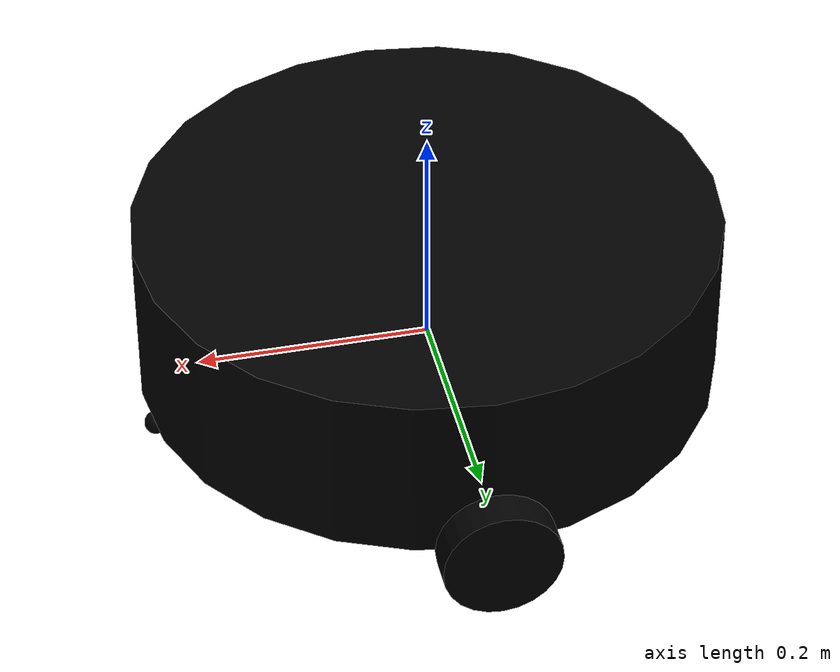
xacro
<?xml version="1.0" ?>
<robot name="simple_bot" xmlns:xacro="http://www.ros.org/wiki/xacro">

  <xacro:macro name="black" >
    <visual>
        <material>
          <ambient>0 0 0 1</ambient>
          <diffuse>0 0 0 1</diffuse>
          <specular>0 0 0 0</specular>
          <emissive>0 0 0 1</emissive>
        </material>
    </visual>
  </xacro:macro>

  <material name="black_ros">
    <color rgba="0 0 0 1"/>
  </material>

  <link name="base_footprint" />

  <link name="base_link">
    <inertial>
      <origin rpy="0 0 0" xyz="0 0 0"/>
      <mass value="5"/>
      <inertia ixx="0.0875" ixy="0.0" ixz="0.0" iyy="0.0875" iyz="0.0" izz="0.15625"/>
    </inertial>
    <visual>
      <origin rpy="0 0 0" xyz="0 0 0"/>
      <geometry>
        <cylinder length="0.15" radius="0.25" />
      </geometry>
      <material name="black_ros" />
    </visual>
    <collision>
      <origin rpy="0 0 0" xyz="0 0 0"/>
      <geometry>
          <cylinder length="0.2" radius="0.3" />
      </geometry>
    </collision>
  </link>

  <link name="wheel_left">
    <inertial>
      <origin rpy="0 0 0" xyz="0 0 0"/>
      <mass value="1"/>
      <inertia ixx="0.0007" ixy="0.0" ixz="0.0" iyy="0.0007" iyz="0.0" izz="0.00125"/>
    </inertial>
    <visual>
      <origin rpy="0 0 0" xyz="0 0 0"/>
      <geometry>
        <cylinder length="0.03" radius="0.05" />
      </geometry>
      <material name="black_ros" />
    </visual>
    <collision>
      <origin rpy="0 0 0" xyz="0 0 0"/>
      <geometry>
          <cylinder length="0.03" radius="0.05" />
      </geometry>
    </collision>
  </link>

  <link name="wheel_right">
    <inertial>
      <origin rpy="0 0 0" xyz="0 0 0"/>
      <mass value="1"/>
      <inertia ixx="0.0007" ixy="0.0" ixz="0.0" iyy="0.0007" iyz="0.0" izz="0.00125"/>
    </inertial>
    <visual>
      <origin rpy="0 0 0" xyz="0 0 0"/>
      <geometry>
        <cylinder length="0.03" radius="0.05" />
      </geometry>
      <material name="black_ros" />
    </visual>
    <collision>
      <origin rpy="0 0 0" xyz="0 0 0"/>
      <geometry>
          <cylinder length="0.03" radius="0.05" />
      </geometry>
    </collision>
  </link>

  <link name="caster_front">
    <inertial>
      <origin rpy="0 0 0" xyz="0 0 0"/>
      <mass value="0.1"/>
      <inertia ixx="0.000004" ixy="0.0" ixz="0.0" iyy="0.000004" iyz="0.0" izz="0.000004"/>
    </inertial>
    <visual>
      <origin rpy="0 0 0" xyz="0 0 0"/>
      <geometry>
        <sphere radius="0.01" />
      </geometry>
      <material name="black_ros" />
    </visual>
    <collision>
      <origin rpy="0 0 0" xyz="0 0 0"/>
      <geometry>
          <sphere radius="0.01" />
      </geometry>
    </collision>
  </link>

  <link name="caster_rear">
    <inertial>
      <origin rpy="0 0 0" xyz="0 0 0"/>
      <mass value="0.1"/>
      <inertia ixx="0.000004" ixy="0.0" ixz="0.0" iyy="0.000004" iyz="0.0" izz="0.000004"/>
    </inertial>
    <visual>
      <origin rpy="0 0 0" xyz="0 0 0"/>
      <geometry>
        <sphere radius="0.01" />
      </geometry>
      <material name="black_ros" />
    </visual>
    <collision>
      <origin rpy="0 0 0" xyz="0 0 0"/>
      <geometry>
          <sphere radius="0.01" />
      </geometry>
    </collision>
  </link>

  <gazebo reference="base_link">
    <xacro:black/>
  </gazebo>

  <gazebo reference="wheel_left">
    <xacro:black/>
  </gazebo>

  <gazebo reference="wheel_right">
    <xacro:black/>
  </gazebo>

  <gazebo reference="caster_front">
    <xacro:black/>
  </gazebo>

  <gazebo reference="caster_rear">
    <xacro:black/>
  </gazebo>

  <joint name="base_link_joint" type="fixed">
    <origin rpy="0 0 0" xyz="0 0 0.05"/>
    <parent link="base_footprint"/>
    <child link="base_link"/>
  </joint>

  <joint name="caster_front_joint" type="fixed">
    <origin rpy="0 0 0" xyz="0.24 0 -0.11"/>
    <parent link="base_link"/>
    <child link="caster_front"/>
  </joint>

  <joint name="caster_rear_joint" type="fixed">
    <origin rpy="0 0 0" xyz="-0.24 0 -0.11"/>
    <parent link="base_link"/>
    <child link="caster_rear"/>
  </joint>

  <joint name="wheel_left_joint" type="continuous">
    <origin rpy="1.57 0 0" xyz="0 0.2655 -0.07"/>
    <parent link="base_link"/>
    <child link="wheel_left"/>
    <axis xyz="0 0 -1" />
  </joint>

  <joint name="wheel_right_joint" type="continuous">
    <origin rpy="-1.57 0 0" xyz="0 -0.2655 -0.07"/>
    <parent link="base_link"/>
    <child link="wheel_right"/>
    <axis xyz="0 0 1" />
  </joint>

  <gazebo>
    <plugin
        filename="libgz-sim-diff-drive-system.so"
        name="gz::sim::systems::DiffDrive">
        <left_joint>wheel_left_joint</left_joint>
        <right_joint>wheel_right_joint</right_joint>
        <wheel_separation>0.531</wheel_separation>
        <wheel_radius>0.05</wheel_radius>
        <max_wheel_torque>2000</max_wheel_torque>
        <max_wheel_acceleration>100.0</max_wheel_acceleration>
        <frame_id>odom</frame_id>
        <tf_topic>gz_odom</tf_topic>
        <child_frame_id>base_footprint</child_frame_id>
    </plugin>
  </gazebo>

  <gazebo>
    <plugin name="FakeLandmarkPoints" filename="libfake_landmark_points.so">
      <landmark_topic>landmark_points</landmark_topic>
      <ros_frame>base_footprint</ros_frame>
      <threshold>2.5</threshold>
      <landmark_identifier>pillar</landmark_identifier>
    </plugin>
  </gazebo>

  <gazebo>
    <plugin name="FakeLandmarkPoses" filename="libfake_landmark_poses.so">
      <landmark_topic>landmark_poses</landmark_topic>
      <ros_frame>base_footprint</ros_frame>
      <threshold>5</threshold>
      <landmark_identifier>cube</landmark_identifier>
    </plugin>
  </gazebo>

  <gazebo>
    <plugin name="FakeLandmarkLines" filename="libfake_landmark_lines.so">
      <landmark_topic>landmark_lines</landmark_topic>
      <ros_frame>base_footprint</ros_frame>
      <threshold>5</threshold>
      <landmark_identifier>line</landmark_identifier>
    </plugin>
  </gazebo>

  <gazebo>
    <plugin filename="gz-sim-joint-state-publisher-system"
      name="gz::sim::systems::JointStatePublisher">
      <topic>/gz/joint_states</topic>
    </plugin>
  </gazebo>

</robot>
